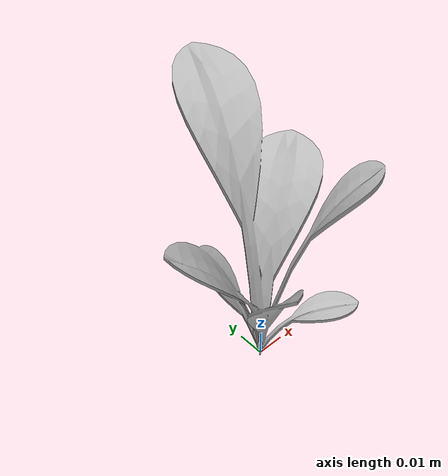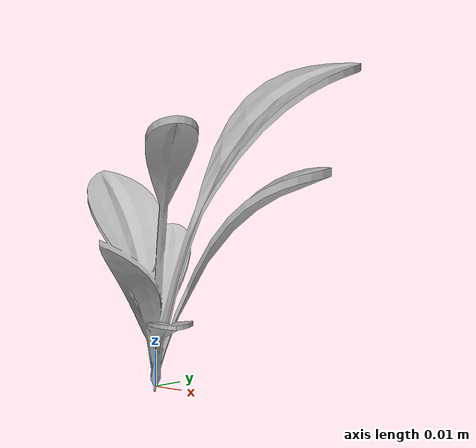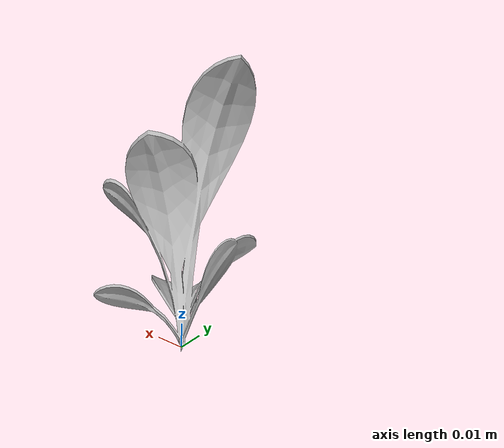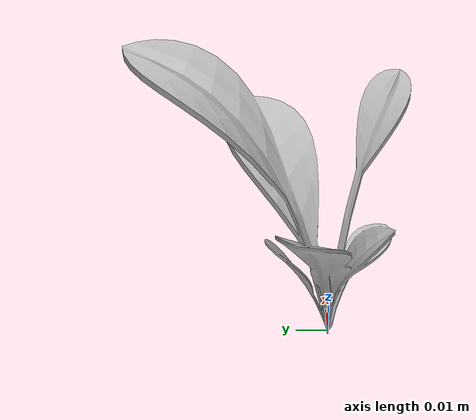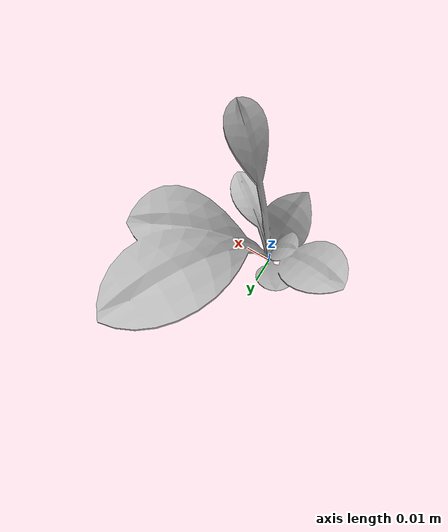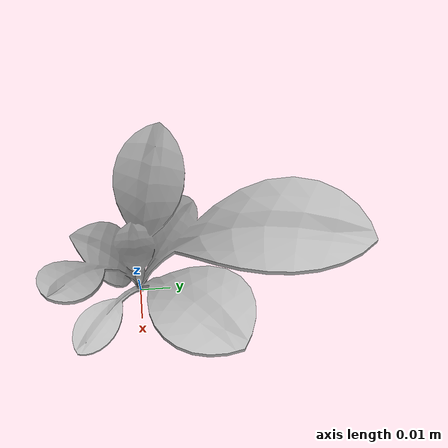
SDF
<sdf version="1.6">
  <model name="sugar_beet_44">
    <static>true</static>
    <link name="body">
      <visual name="visual">
        <geometry>
          <mesh>
            <uri>file:///sugar_beet_44/media/sugar_beet.dae</uri>
          </mesh>
        </geometry>
      </visual>
    </link>
  </model>
</sdf>
